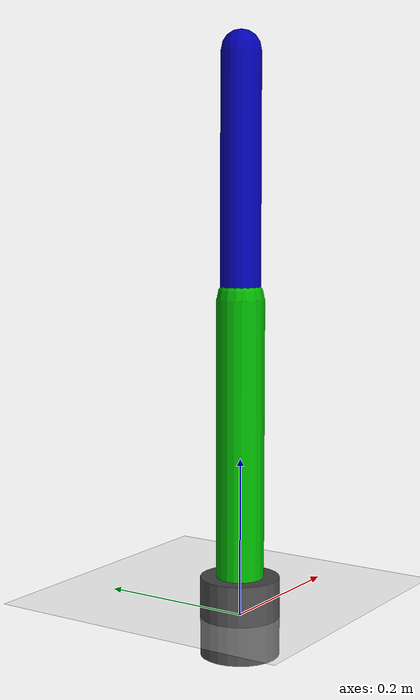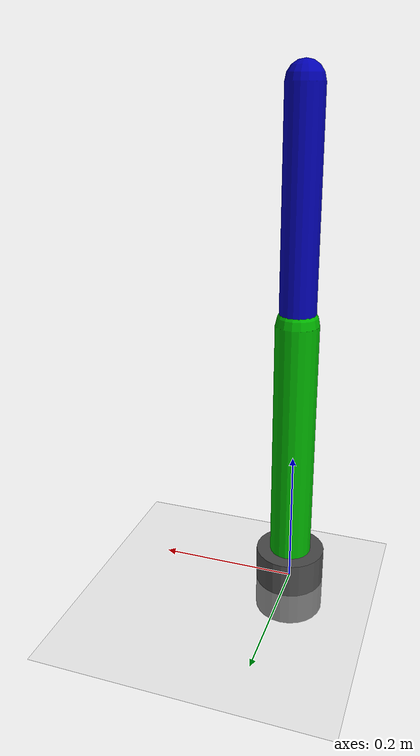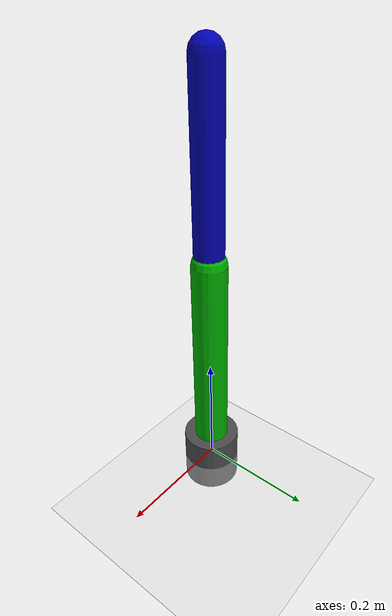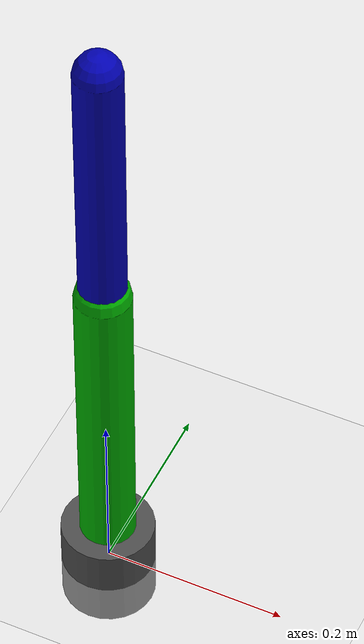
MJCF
<mujoco model="2d_arm_controlled">
    <option timestep="0.0005" gravity="0 0 -9.81"/>

    <worldbody>
        <light pos="0 0 3" dir="0 0 -1"/>
        <geom type="plane" size="10 10 0.1" rgba="0.9 0.9 0.9 1"/>

        <body name="base" pos="0 0 0">
            <geom type="cylinder" size="0.05 0.05" rgba="0.3 0.3 0.3 1"/>

            <body name="link1" pos="0 0 0">
                <joint name="joint1" type="hinge" axis="0 1 0" pos="0 0 0"/>
                <geom type="capsule" fromto="0 0 0 0 0 0.4" size="0.03" rgba="0 0.7 0 1"/>

                <body name="link2" pos="0 0 0.4">
                    <joint name="joint2" type="hinge" axis="0 1 0" pos="0 0 0"/>
                    <geom type="capsule" fromto="0 0 0 0 0 0.3" size="0.025" rgba="0 0 0.7 1"/>
                </body>
            </body>
        </body>
    </worldbody>

    <actuator>
        <!-- Standard position servos where d->ctrl directly commands the desired angle in Radians -->
        <position name="servo1" joint="joint1" kp="200" kv="20"/>
        <position name="servo2" joint="joint2" kp="200" kv="20"/>
    </actuator>
</mujoco>
